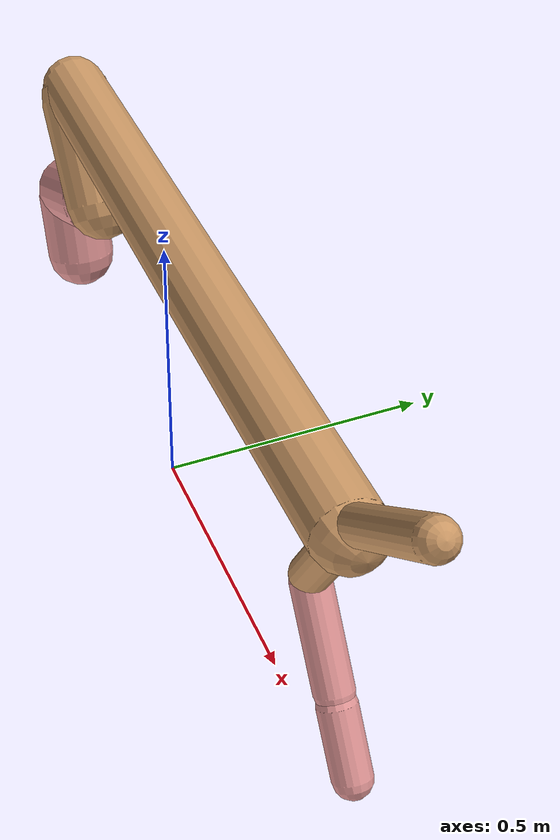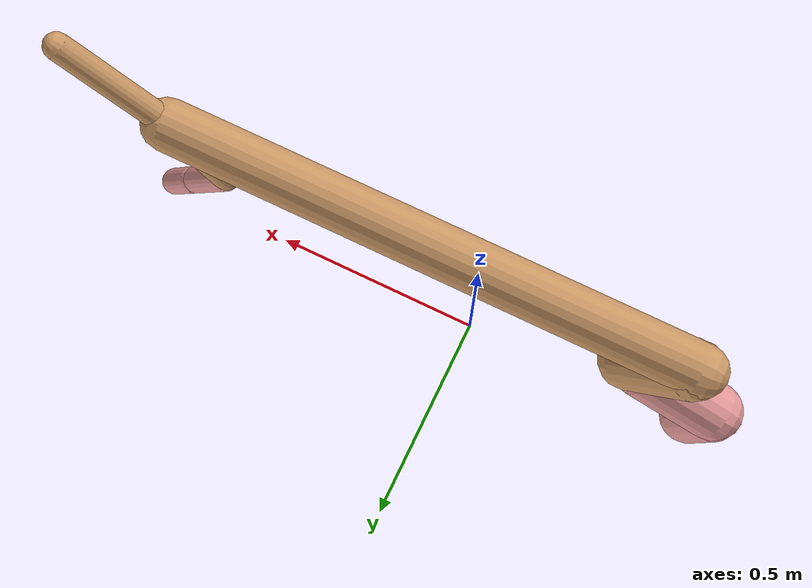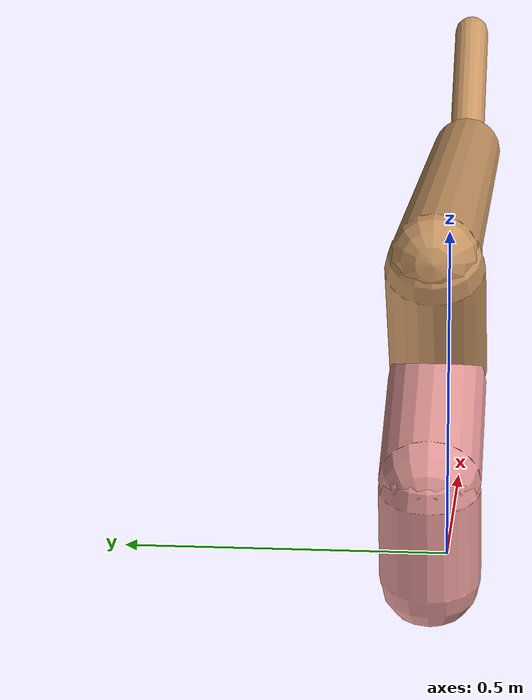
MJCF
<mujoco model="cheetah">
  <compiler angle="radian" coordinate="local" inertiafromgeom="true" settotalmass="14" />
  <default>
    <joint armature=".1" damping=".01" limited="true" solimplimit="0 .8 .03" solreflimit=".02 1" stiffness="8" />
    <geom conaffinity="0" condim="3" contype="1" friction="0.8 .1 .1" rgba="0.8 0.6 .4 1" solimp="0.0 0.8 0.01" solref="0.02 1" />
    <motor ctrllimited="true" ctrlrange="-1 1" />
  </default>
  <size nstack="300000" nuser_geom="1" />
  <option gravity="0 0 -9.81" timestep="0.01" />
  <worldbody>
    <body name="torso" pos="0.0 0.0 0.5383886599825516">
      <joint armature="0" axis="1 0 0" damping="0" limited="false" name="ignorex" pos="0 0 0" stiffness="0" type="slide" />
      <joint armature="0" axis="0 0 1" damping="0" limited="false" name="ignorez" pos="0 0 0" stiffness="0" type="slide" />
      <joint armature="0" axis="0 1 0" damping="0" limited="false" name="ignorey" pos="0 0 0" stiffness="0" type="hinge" />
      <geom fromto="-0.5 0.0 0.0 0.7317959790899571 0.0 0.0" name="torso" size="0.059196807919726126" type="capsule" />
      <geom axisangle="0 1 0 .87" name="head" pos="0.8317959790899571 0.0 0.1" size="0.030145143885259178 0.15" type="capsule" />

      <body name="bthigh" pos="-.5 0 0">
        <joint axis="0 1 0" damping="6" name="bthigh" pos="0 0 0" range="-.52 1.05" stiffness="240" type="hinge" />
        <geom axisangle="0 1 0 -3.8" name="bthigh" pos="0.0734775819030384 0.0 -0.0955208564739499" size="0.06673561684334199 0.10149999999999999" type="capsule" />
        <body name="bshin" pos="0.10695516380607678 0.0 -0.18104171294789978">
          <joint axis="0 1 0" damping="4.5" name="bshin" pos="0 0 0" range="-.785 .785" stiffness="180" type="hinge" />
          <geom axisangle="0 1 0 -2.03" name="bshin" pos="-0.0997507764050038 0.0 -0.0498753882025019" rgba="0.9 0.6 0.6 1" size="0.06673561684334199 0.105" type="capsule" />
          <body name="bfoot" pos="-0.1995015528100076 0.0 -0.0997507764050038">
            <joint axis="0 1 0" damping="3" name="bfoot" pos="0 0 0" range="-.4 .785" stiffness="120" type="hinge" />
            <geom axisangle="0 1 0 -.27" name="bfoot" pos="0.021667753813597694 0.0 -0.07005907066396588" rgba="0.9 0.6 0.6 1" size="0.06673561684334199 0.0658" type="capsule" />
            <inertial mass="10" />
          </body>
        </body>
      </body>
      <body name="fthigh" pos="0.7317959790899571 0.0 0.0">
        <joint axis="0 1 0" damping="4.5" name="fthigh" pos="0 0 0" range="-1.5 0.8" stiffness="180" type="hinge" />
        <geom axisangle="0 1 0 .52" name="fthigh" pos="-0.058671172461389656 0.0 -0.10057915279095368" size="0.0322 0.11051641399338848" type="capsule" />
        <body name="fshin" pos="-0.11734234492277931 0.0 -0.20115830558190737">
          <joint axis="0 1 0" damping="3" name="fshin" pos="0 0 0" range="-1.2 1.1" stiffness="120" type="hinge" />
          <geom axisangle="0 1 0 -.6" name="fshin" pos="0.054508448979832064 0.0 -0.07547323704899825" rgba="0.9 0.6 0.6 1" size="0.0322 0.08808075100224945" type="capsule" />
          <body name="ffoot" pos="0.10901689795966413 0.0 -0.1509464740979965">
            <joint axis="0 1 0" damping="1.5" name="ffoot" pos="0 0 0" range="-3.1 -0.3" stiffness="60" type="hinge" />
            <geom axisangle="0 1 0 -.6" name="ffoot" pos="0.03860096325630256 0.0 -0.06004594284313732" rgba="0.9 0.6 0.6 1" size="0.0322 0.05816653368073078" type="capsule" />
            <inertial mass="10" />
          </body>
        </body>
      </body>
    </body>
  </worldbody>
  <actuator>
    <motor gear="120" joint="bthigh" name="bthigh" />
    <motor gear="90" joint="bshin" name="bshin" />
    <motor gear="60" joint="bfoot" name="bfoot" />
    <motor gear="120" joint="fthigh" name="fthigh" />
    <motor gear="60" joint="fshin" name="fshin" />
    <motor gear="30" joint="ffoot" name="ffoot" />
  </actuator>
</mujoco>
